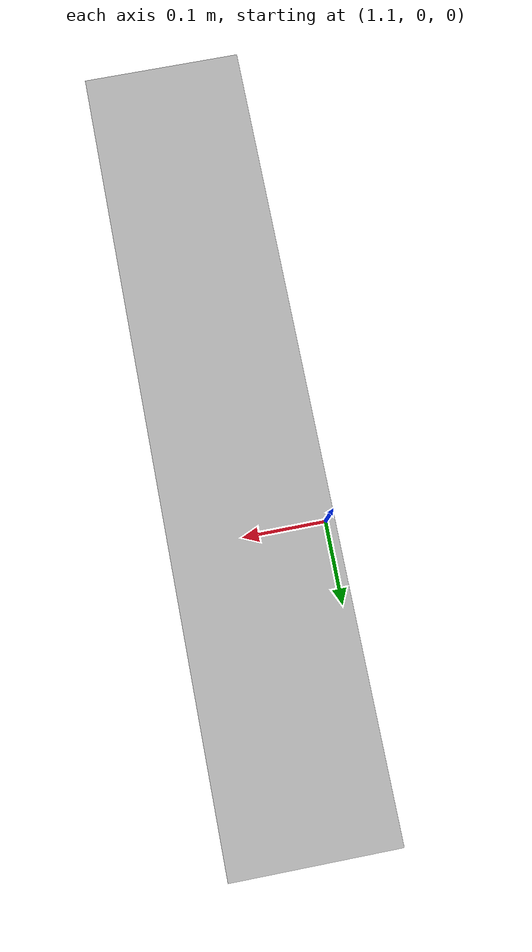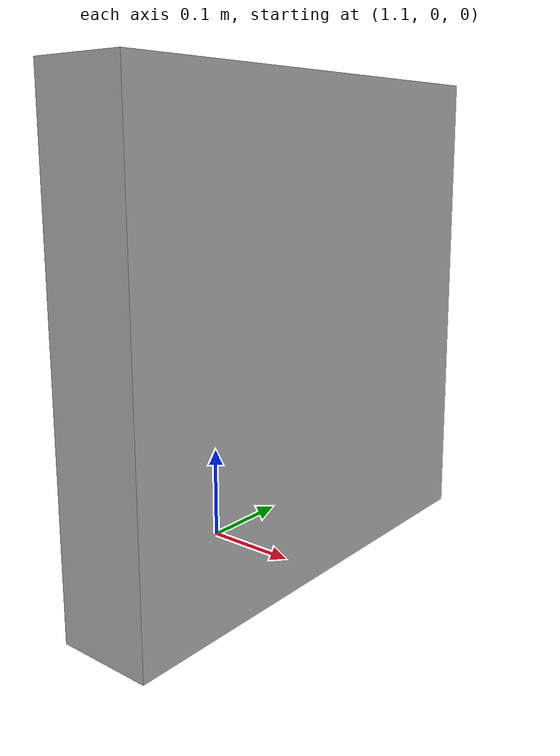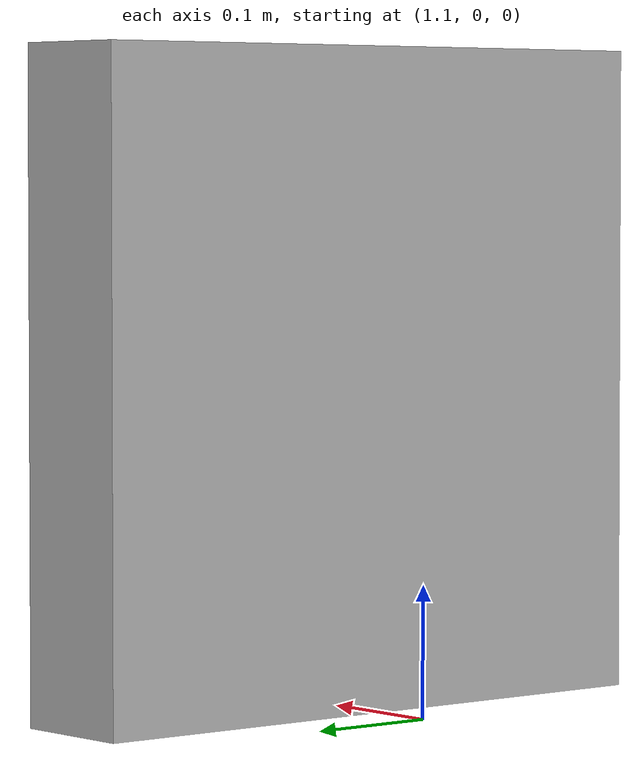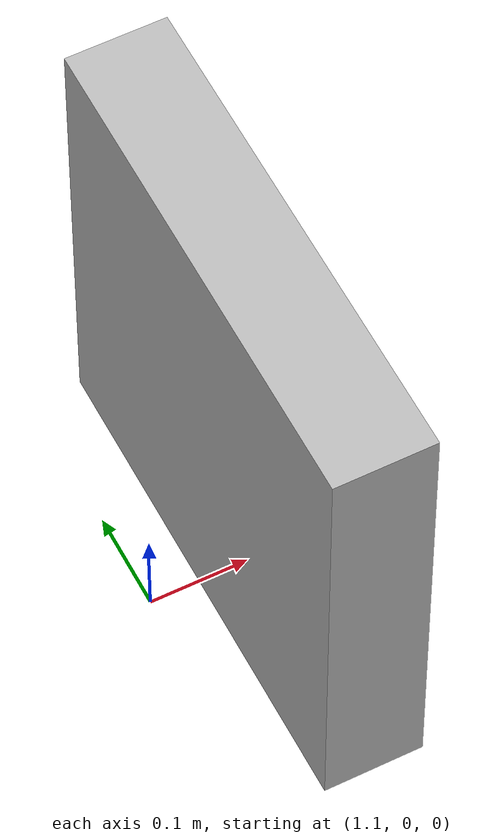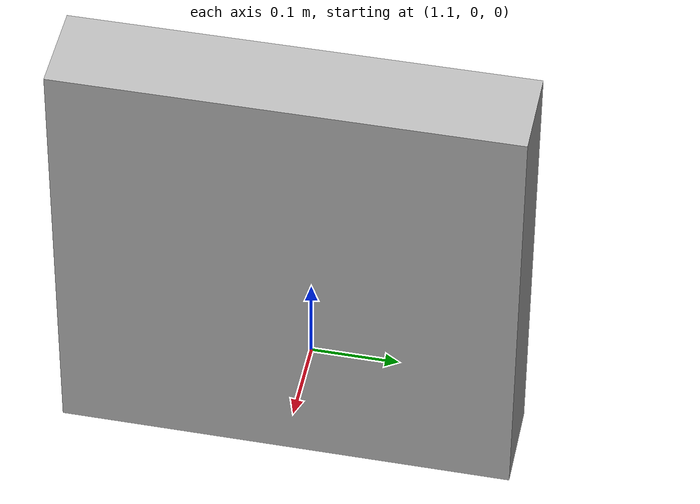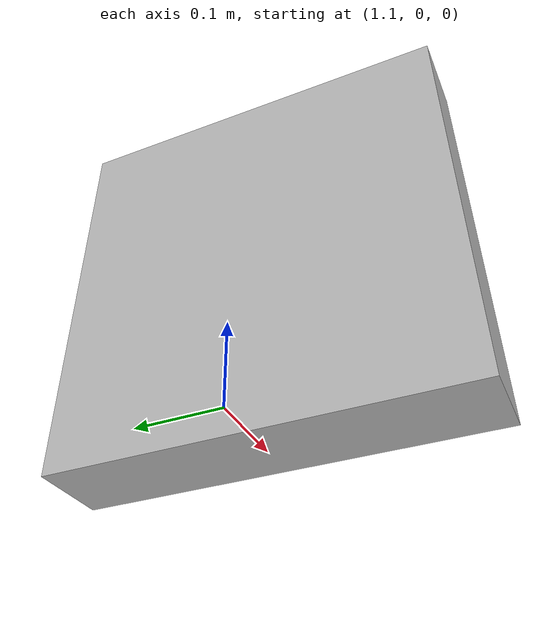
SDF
<?xml version='1.0'?>
<sdf version='1.4'>
  <model name="redtag">
    <link name='link'>
      <pose>1.2 0 0.25 0 0 0</pose>
      <inertial>
        <mass>0.390</mass>
        <inertia>
          <ixx>0.00058</ixx>
          <ixy>0</ixy>
          <ixz>0</ixz>
          <iyy>0.00058</iyy>
          <iyz>0</iyz>
          <izz>0.00019</izz>
        </inertia>
      </inertial>
      <collision name='collision'>
        <geometry>
                <box>
                  <size>0.1 0.5 .5</size>
                </box>
        </geometry>
      </collision>

      <visual name='visual'>
        <geometry>
                <box>
                  <size>0.1 0.5 .5</size>
                </box>
        </geometry>

        <material>
          <script>
            <uri>model://redtag/materials/scripts</uri>
            <uri>model://redtag/materials/textures</uri>
            <name>Mark/Diffuse</name>
          </script>
        </material>
      </visual>
    </link>
  </model>
</sdf>
